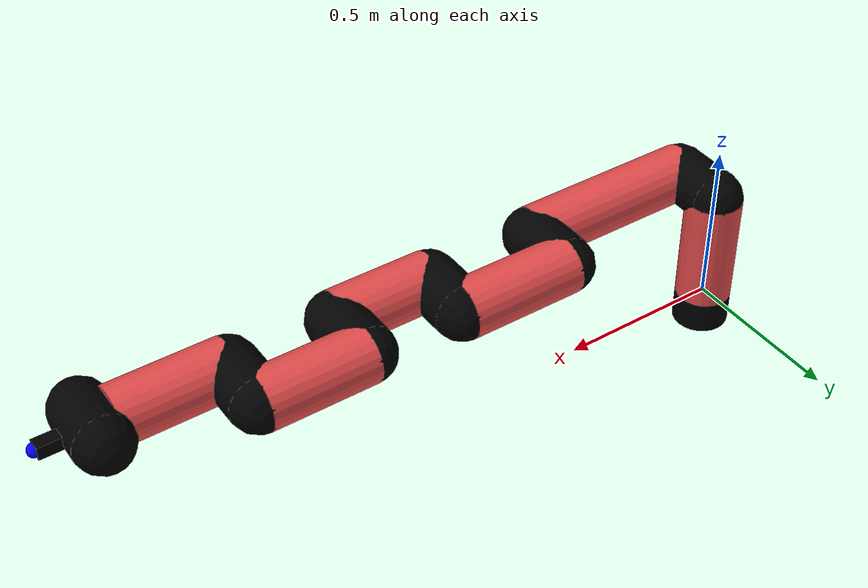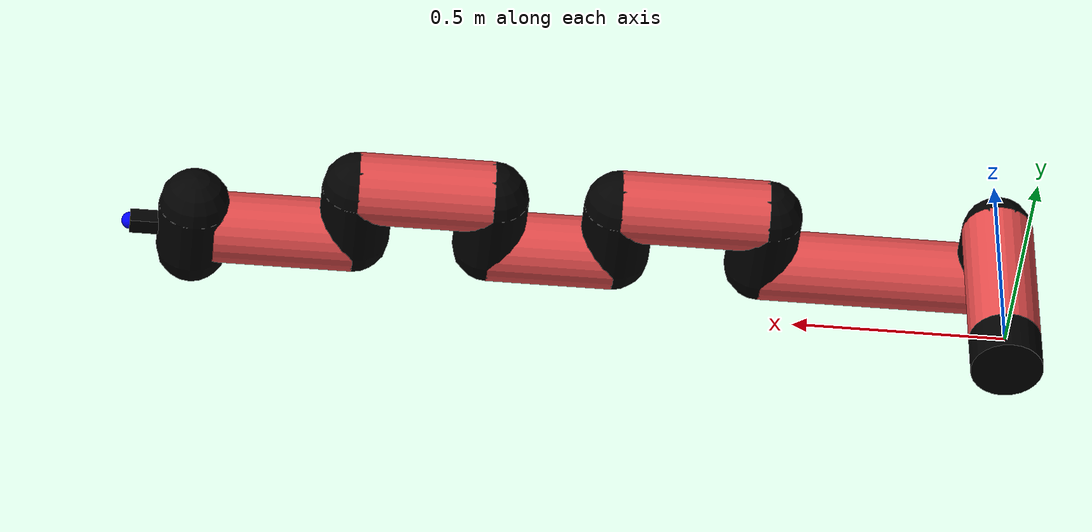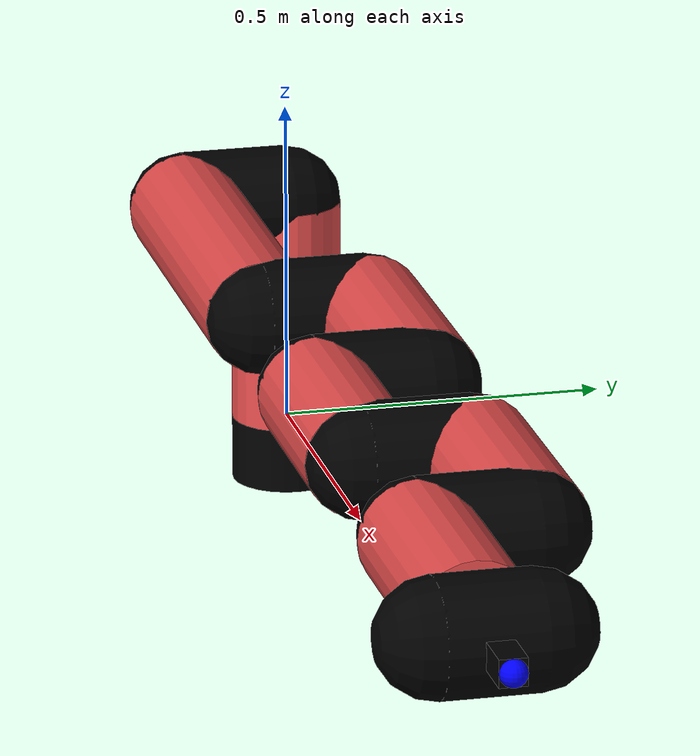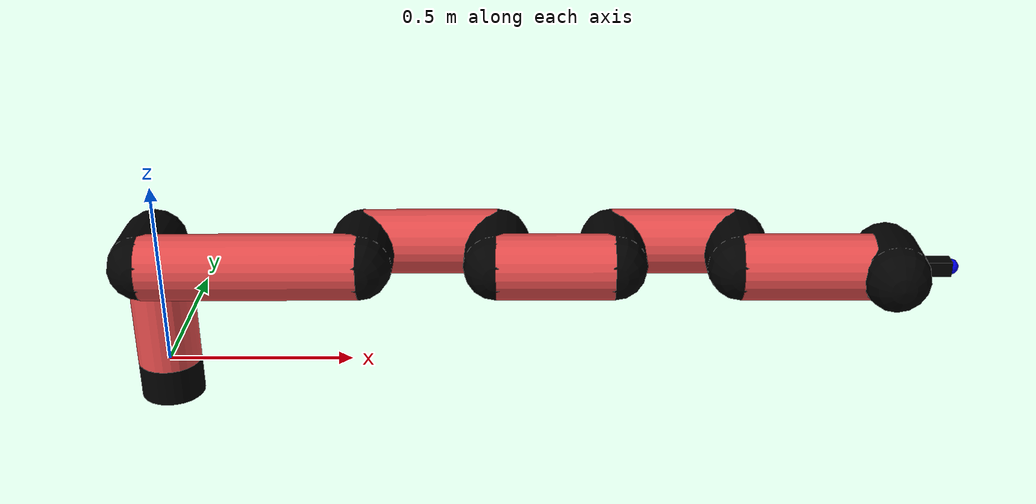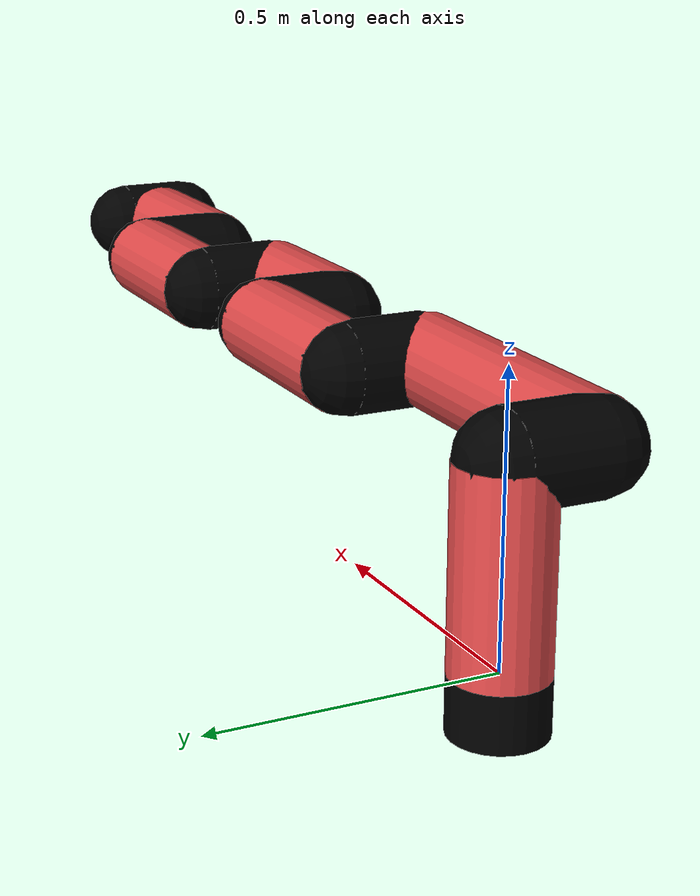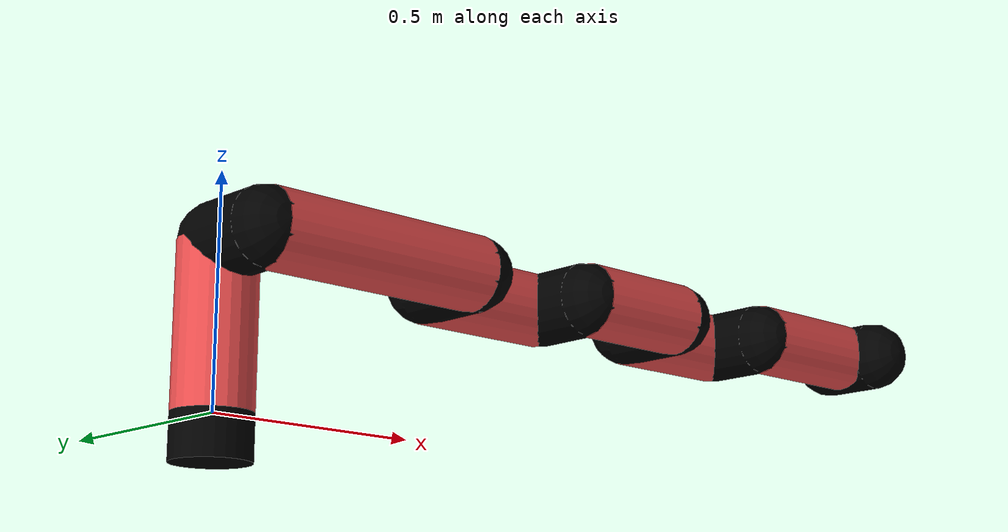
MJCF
<mujoco model="manipulator">
		<compiler angle="degree" coordinate="local" inertiafromgeom="auto" meshdir="meshes/"/>
		<option gravity="0 0 0" integrator="RK4" iterations="30" timestep="0.01"/>

		<default>
		<joint armature="1" limited="true" stiffness="10" damping="15" frictionloss="5.0"/>
		<geom conaffinity="1" condim="3" contype="1" friction=".5 .1 .1" margin="0.002"/>
		<motor ctrllimited="true"/>
		<position ctrllimited="true"/>
		</default>

		<asset>
		<texture builtin="gradient" height="100" rgb1="1.0 1.0 1.0" rgb2="1.0 1.0 1.0" type="skybox" width="100"/>
		<texture builtin="flat" height="32" name="arm_tex" rgb1="0.9 0.3 0.3" type="2d" width="32"/>
		<texture builtin="flat" height="32" name="gripper_tex" rgb1="0.0 0.0 0.0" type="cube" width="32"/>

		<material name="arm_mat" shininess="0.1" specular="0.1" texture="arm_tex"/>
		<material name="gripper_mat" shininess="1" specular="1" texture="gripper_tex"/>
		</asset>

		<worldbody>
		<light cutoff="45" diffuse=".8 .8 .8" dir="0 0.16 -1" directional="false" name="light" pos="0 -2.0 8.0" specular="0.3 0.3 0.3"/>

		<body name="base_link" pos="0 0 -0.1">
		<geom fromto="0 0 0 0 0 0.1" material="arm_mat" name="base_link" rgba="0.0 0.0 0.0 1" size="0.085" type="cylinder"/>
		</body>

		<body name="l1" pos="0 0 0">
<geom fromto="0 0 0 0 0 0.35" material="arm_mat" name="l1" rgba="0.9 0.3 0.3 1" size="0.085" type="cylinder"/>
<geom fromto="0 0 0.35 0 -0.16 0.35" material="arm_mat" name="l1_ex" rgba="0.0 0.0 0.0 1" size="0.085" type="capsule"/>
<joint axis="0 0 1" name="j1" pos="0 0 0" range="-90 90" damping="31.58" frictionloss="9.25"/>

<body name="l2" pos="0 -0.16 0.35">
<geom fromto="0 0 0 0.55 0 0" material="arm_mat" name="l2" rgba="0.9 0.3 0.3 1" size="0.085" type="cylinder"/>
<geom fromto="0.55 0 0 0.55 0.16 0" material="arm_mat" name="l2_ex" rgba="0.0 0.0 0.0 1" size="0.085" type="capsule"/>
<joint axis="-0.04 1.16 0.06" name="j2" pos="0 0 0" range="-90 60" damping="35.61" frictionloss="10.22"/>

<body name="l3" pos="0.55 0.16 0">
<geom fromto="0 0 0 0.35 0 0" material="arm_mat" name="l3" rgba="0.9 0.3 0.3 1" size="0.085" type="cylinder"/>
<geom fromto="0.35 0 0 0.35 -0.16 0" material="arm_mat" name="l3_ex" rgba="0.0 0.0 0.0 1" size="0.085" type="capsule"/>
<joint axis="-0.18 0.79 -0.24" name="j3" pos="0 0 0" range="-30 60" damping="29.77" frictionloss="9.84"/>

<body name="l4" pos="0.35 -0.16 0">
<geom fromto="0 0 0 0.3 0 0" material="arm_mat" name="l4" rgba="0.9 0.3 0.3 1" size="0.085" type="cylinder"/>
<geom fromto="0.3 0 0 0.3 0.16 0" material="arm_mat" name="l4_ex" rgba="0.0 0.0 0.0 1" size="0.085" type="capsule"/>
<joint axis="-0.22 0.98 -0.19" name="j4" pos="0 0 0" range="-30 60" damping="33.67" frictionloss="9.61"/>

<body name="l5" pos="0.3 0.16 0">
<geom fromto="0 0 0 0.32 0 0" material="arm_mat" name="l5" rgba="0.9 0.3 0.3 1" size="0.085" type="cylinder"/>
<geom fromto="0.32 0 0 0.32 -0.16 0" material="arm_mat" name="l5_ex" rgba="0.0 0.0 0.0 1" size="0.085" type="capsule"/>
<joint axis="-0.24 1.13 -0.05" name="j5" pos="0 0 0" range="-30 60" damping="22.8" frictionloss="10.04"/>

<body name="l6" pos="0.32 -0.16 0">
<geom fromto="0 0 0 0.33 0 0" material="arm_mat" name="l6" rgba="0.9 0.3 0.3 1" size="0.085" type="cylinder"/>
<joint axis="0.12 0.98 -0.02" name="j6" pos="0 0 0" range="-30 60" damping="28.53" frictionloss="10.94"/>

<body name="gripper" pos="0.33 0 0">
<geom fromto="0.05 -0.07 0 0.05 0.07 0" material="gripper_mat" name="gripper" rgba="0.0 0.0 0.0 1" size="0.085" type="capsule"/><joint axis="1 0 0" name="j7" pos="0 0 0" range="-90 90" damping="15" frictionloss="5.0"/><body name="finger" pos="0.1 0 0">
<geom fromto="0 0.0 0 0.1 0.0 0" material="gripper_mat" name="finger" rgba="0.0 0.0 0.0 1" size="0.020 0.06 0.06" type="box"/>
</body>
<site name="current" pos="0.2 0. 0.0" rgba="0. 0. 1.0 1" size="0.02" type="sphere"/>
</body>
</body>
</body>
</body>
</body>
</body>
</body>
</worldbody>
<actuator>
<motor ctrllimited="true" ctrlrange="-1.0 1.0" joint="j1" gear="70.58"/>
<motor ctrllimited="true" ctrlrange="-1.0 1.0" joint="j2" gear="66.08"/>
<motor ctrllimited="true" ctrlrange="-1.0 1.0" joint="j3" gear="61.82"/>
<motor ctrllimited="true" ctrlrange="-1.0 1.0" joint="j4" gear="74.21"/>
<motor ctrllimited="true" ctrlrange="-1.0 1.0" joint="j5" gear="97.85"/>
<motor ctrllimited="true" ctrlrange="-1.0 1.0" joint="j6" gear="84.2"/>
<motor ctrllimited="true" ctrlrange="-1.0 1.0" joint="j7" gear="80"/>
</actuator>
</mujoco>
